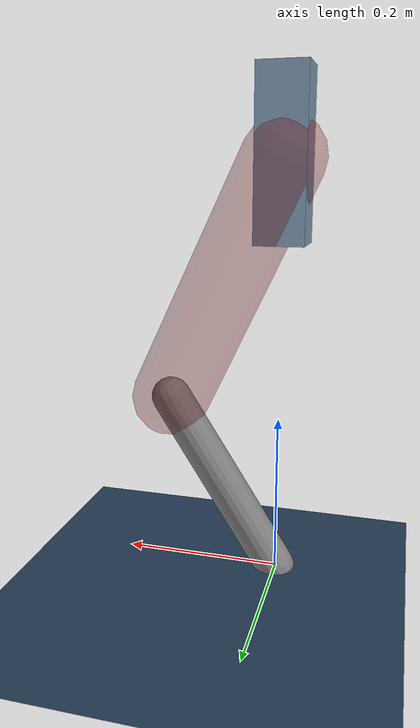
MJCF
<mujoco model="Hopper2D">
	<compiler inertiafromgeom="true" angle="radian" />
	<option timestep="0.001" integrator="implicit" cone="elliptic" solver="Newton" tolerance="1e-10" />

	<default>
		<geom contype="1" conaffinity="1" condim="3" friction="2 0.005 0.0001" solref="0.005 1" />
		<joint limited="true" damping="0.1" />
	</default>

	<asset>
		<texture name="skybox" type="skybox" builtin="gradient" rgb1=".4 .6 .8" rgb2="0 0 0" width="800" height="800" />
		<texture name="grid" type="2d" builtin="checker" rgb1=".1 .2 .3" rgb2=".2 .3 .4" width="300" height="300" mark="edge" markrgb=".2 .3 .4" />
		<material name="ground" texture="grid" texrepeat="1 1" texuniform="true" reflectance="0.1" />
		<material name="leg" rgba="0.5 0.6 0.7 1" />
	</asset>

	<worldbody>

		<geom name="floor" type="plane" size="5 5 0.25" material="ground" />

		<light directional="false" diffuse="0.8 0.8 0.8" specular="0.3 0.3 0.3" pos="0 0 2" dir="0 0 -1" />
		<light mode="targetbodycom" target="base" directional="false" diffuse="0.8 0.8 0.8" specular="0.3 0.3 0.3" pos="0 0 2" dir="0 0 -1" />

		<camera name="fixed" pos="0 -2 1" xyaxes="1 0 0 0 0 1" />
		<camera name="tracking" mode="trackcom" pos="0 -3 1" />

		<body name="root" pos="0 0 0.5175718389160009">
			<joint name="slide_x" type="slide" axis="1 0 0" range="-100 100" />
			<joint name="slide_z" type="slide" axis="0 0 1" range="0 10" />

			<body name="base" pos="0 0 0">
				<geom name="torso" type="box" size="0.03 0.03 0.1" mass="2.95" material="leg" />

				<body name="link1" pos="0 0 0" euler="0 1.130479551000491 0">
					<joint type="hinge" axis="0 -1 0" pos="0 0 0" name="hinge1" limited="true" range="-3.14 3.14" stiffness="0" damping="0.1" />
					<geom name="thigh" type="capsule" fromto="0 0 0 0.32876273932874733 0 0" size="0.05" rgba="0.5 0 0 0.3" mass="1.0674356701204926" />

					<body name="link2" pos="0.32876273932874733 0 0" euler="0 1.007112594808629 0">
						<joint type="hinge" axis="0 -1 0" pos="0 0 0" name="hinge2" limited="true" range="-3.14 3.14" stiffness="0" damping="0.1" />
						<geom name="shank" type="capsule" fromto="0 0 0 0.2609777891918567 0 0" size="0.025" mass="0.45158001027267103" />

					</body>
				</body>
			</body>
		</body>
	</worldbody>

	<actuator>
		<motor name="torque1" joint="hinge1" ctrlrange="-146.15535208992932 146.15535208992932" ctrllimited="true" gear="1" />
		<motor name="torque2" joint="hinge2" ctrlrange="-61.83138595865258 61.83138595865258" ctrllimited="true" gear="1" />
	</actuator>
</mujoco>
